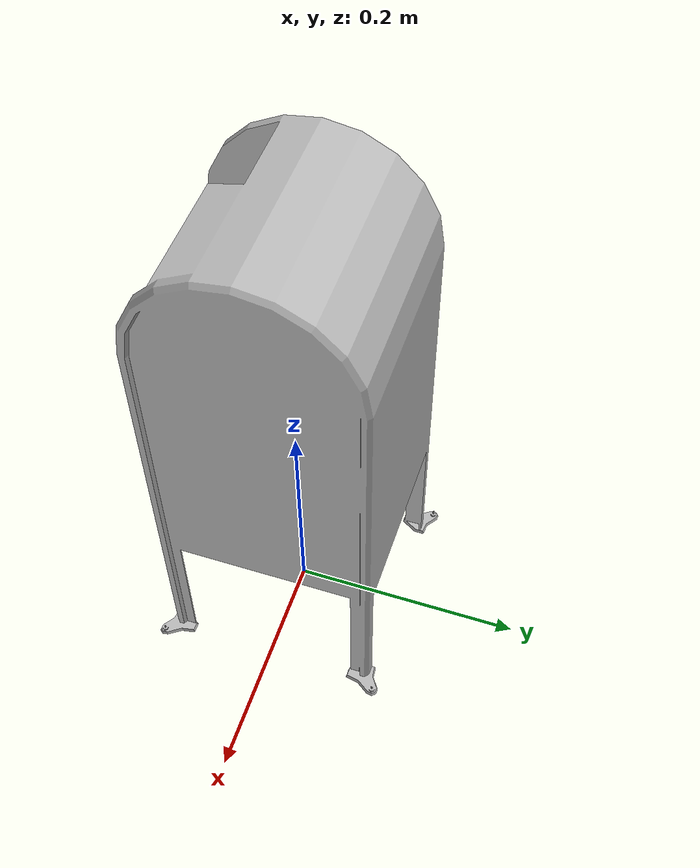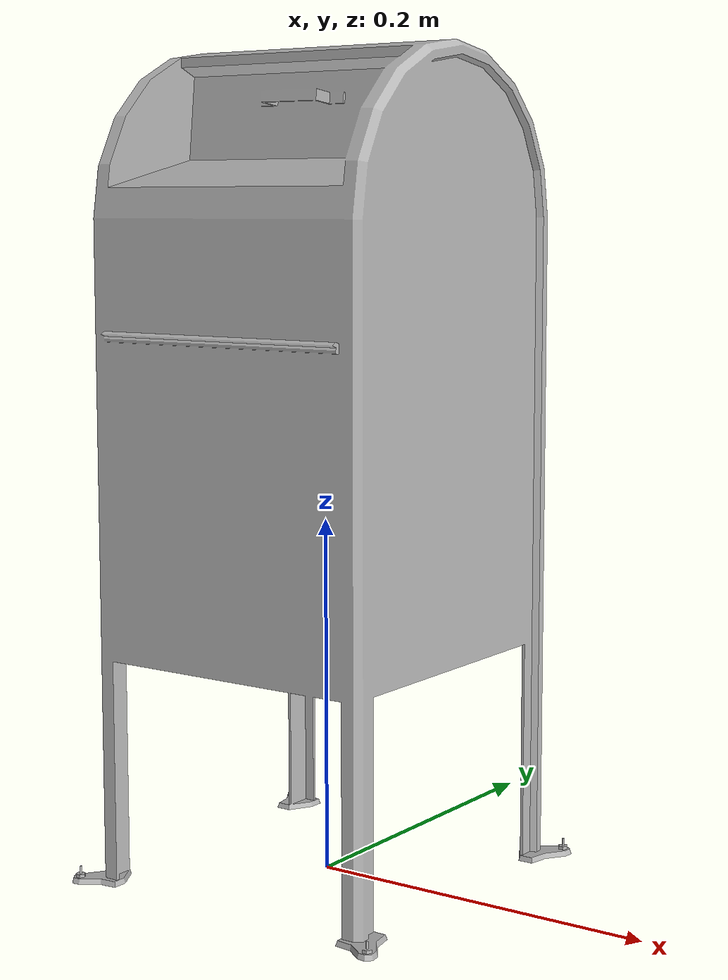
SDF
<?xml version="1.0" ?>
<sdf version="1.6">
  <model name="postbox">
    <plugin filename="gz-sim-contact-system"
          name="gz::sim::systems::Contact">
    </plugin>
    <static>true</static>
    <link name="link">
      <collision name="collision">
        <geometry>
          <mesh>
            <uri>model://postbox/meshes/postbox.dae</uri>
            <scale>0.3 0.3 0.3</scale>
          </mesh>
        </geometry>
      </collision>
      <visual name="visual">
        <geometry>
          <mesh>
            <uri>model://postbox/meshes/postbox.dae</uri>
            <scale>0.3 0.3 0.3</scale>
          </mesh>
        </geometry>
      </visual>
      <sensor name='sensor_contact' type='contact'>
          <contact>
            <collision>collision</collision>
            <topic>/collision_detect</topic>
          </contact>
          <always_on>1</always_on>
          <update_rate>100</update_rate>
        </sensor>
    </link>
  </model>
</sdf>
